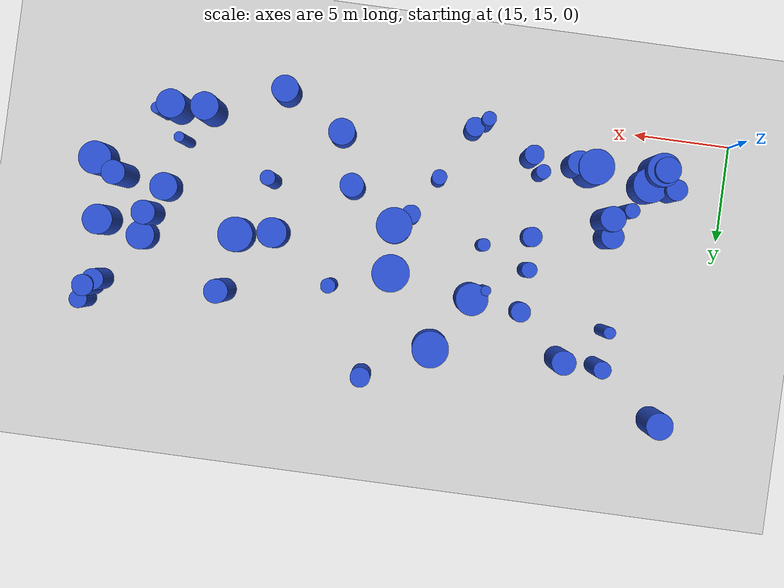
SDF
<sdf version="1.6">
 <world name="default">
  <model name="ground_plane">
   <static>1</static>
   <link name="link">
    <collision name="collision">
     <geometry><plane><normal>0 0 1</normal><size>100 100</size></plane></geometry>
     <surface><friction><ode><mu>100</mu><mu2>50</mu2></ode></friction></surface>
    </collision>
    <visual name="visual">
     <cast_shadows>0</cast_shadows>
     <geometry><plane><normal>0 0 1</normal><size>100 100</size></plane></geometry>
     <material>
      <script><uri>file://media/materials/scripts/gazebo.material</uri><name>Gazebo/Grey</name></script>
     </material>
    </visual>
   </link>
  </model>
  <model name="7">
   <static>0</static>
   <link name="link">
    <inertial>
     <mass>2</mass>
     <inertia><ixx>2.10084</ixx><ixy>0</ixy><ixz>0</ixz><iyy>2.10084</iyy><iyz>0</iyz><izz>0.955069</izz></inertia>
    </inertial>
    <collision name="collision">
     <geometry><cylinder><length>3.12087</length><radius>0.977276</radius></cylinder></geometry>
     <surface><contact><collide_without_contact>1</collide_without_contact></contact></surface>
    </collision>
    <visual name="visual">
     <geometry><cylinder><length>3.12087</length><radius>0.977276</radius></cylinder></geometry>
     <material>
      <script><uri>file://media/materials/scripts/gazebo.material</uri><name>Gazebo/Blue</name></script>
     </material>
    </visual>
    <gravity>0</gravity>
   </link>
   <pose>31.8249 23.959 1.56043 0 -0 0</pose>
  </model>
  <model name="10">
   <static>0</static>
   <link name="link">
    <inertial>
     <mass>2</mass>
     <inertia><ixx>3.95554</ixx><ixy>0</ixy><ixz>0</ixz><iyy>3.95554</iyy><iyz>0</iyz><izz>0.519828</izz></inertia>
    </inertial>
    <collision name="collision">
     <geometry><cylinder><length>4.7089</length><radius>0.720991</radius></cylinder></geometry>
     <surface><contact><collide_without_contact>1</collide_without_contact></contact></surface>
    </collision>
    <visual name="visual">
     <geometry><cylinder><length>4.7089</length><radius>0.720991</radius></cylinder></geometry>
     <material>
      <script><uri>file://media/materials/scripts/gazebo.material</uri><name>Gazebo/Blue</name></script>
     </material>
    </visual>
    <gravity>0</gravity>
   </link>
   <pose>42.2217 16.8427 2.35445 0 -0 0</pose>
  </model>
  <model name="20">
   <static>0</static>
   <link name="link">
    <inertial>
     <mass>2</mass>
     <inertia><ixx>4.13593</ixx><ixy>0</ixy><ixz>0</ixz><iyy>4.13593</iyy><iyz>0</iyz><izz>0.377057</izz></inertia>
    </inertial>
    <collision name="collision">
     <geometry><cylinder><length>4.86666</length><radius>0.614049</radius></cylinder></geometry>
     <surface><contact><collide_without_contact>1</collide_without_contact></contact></surface>
    </collision>
    <visual name="visual">
     <geometry><cylinder><length>4.86666</length><radius>0.614049</radius></cylinder></geometry>
     <material>
      <script><uri>file://media/materials/scripts/gazebo.material</uri><name>Gazebo/Blue</name></script>
     </material>
    </visual>
    <gravity>0</gravity>
   </link>
   <pose>46.3124 20.7601 2.43333 0 -0 0</pose>
  </model>
  <model name="25">
   <static>0</static>
   <link name="link">
    <inertial>
     <mass>2</mass>
     <inertia><ixx>3.21255</ixx><ixy>0</ixy><ixz>0</ixz><iyy>3.21255</iyy><iyz>0</iyz><izz>0.847452</izz></inertia>
    </inertial>
    <collision name="collision">
     <geometry><cylinder><length>4.0906</length><radius>0.920571</radius></cylinder></geometry>
     <surface><contact><collide_without_contact>1</collide_without_contact></contact></surface>
    </collision>
    <visual name="visual">
     <geometry><cylinder><length>4.0906</length><radius>0.920571</radius></cylinder></geometry>
     <material>
      <script><uri>file://media/materials/scripts/gazebo.material</uri><name>Gazebo/Blue</name></script>
     </material>
    </visual>
    <gravity>0</gravity>
   </link>
   <pose>31.9637 21.5128 2.0453 0 -0 0</pose>
  </model>
  <model name="29">
   <static>0</static>
   <link name="link">
    <inertial>
     <mass>2</mass>
     <inertia><ixx>3.4064</ixx><ixy>0</ixy><ixz>0</ixz><iyy>3.4064</iyy><iyz>0</iyz><izz>0.0952166</izz></inertia>
    </inertial>
    <collision name="collision">
     <geometry><cylinder><length>4.48918</length><radius>0.308572</radius></cylinder></geometry>
     <surface><contact><collide_without_contact>1</collide_without_contact></contact></surface>
    </collision>
    <visual name="visual">
     <geometry><cylinder><length>4.48918</length><radius>0.308572</radius></cylinder></geometry>
     <material>
      <script><uri>file://media/materials/scripts/gazebo.material</uri><name>Gazebo/Blue</name></script>
     </material>
    </visual>
    <gravity>0</gravity>
   </link>
   <pose>20.4595 25.4538 2.24459 0 -0 0</pose>
  </model>
  <model name="34">
   <static>0</static>
   <link name="link">
    <inertial>
     <mass>2</mass>
     <inertia><ixx>2.04762</ixx><ixy>0</ixy><ixz>0</ixz><iyy>2.04762</iyy><iyz>0</iyz><izz>0.252697</izz></inertia>
    </inertial>
    <collision name="collision">
     <geometry><cylinder><length>3.39524</length><radius>0.502689</radius></cylinder></geometry>
     <surface><contact><collide_without_contact>1</collide_without_contact></contact></surface>
    </collision>
    <visual name="visual">
     <geometry><cylinder><length>3.39524</length><radius>0.502689</radius></cylinder></geometry>
     <material>
      <script><uri>file://media/materials/scripts/gazebo.material</uri><name>Gazebo/Blue</name></script>
     </material>
    </visual>
    <gravity>0</gravity>
   </link>
   <pose>28.5365 15.9625 1.69762 0 -0 0</pose>
  </model>
  <model name="39">
   <static>0</static>
   <link name="link">
    <inertial>
     <mass>2</mass>
     <inertia><ixx>1.9999</ixx><ixy>0</ixy><ixz>0</ixz><iyy>1.9999</iyy><iyz>0</iyz><izz>0.310791</izz></inertia>
    </inertial>
    <collision name="collision">
     <geometry><cylinder><length>3.32671</length><radius>0.557487</radius></cylinder></geometry>
     <surface><contact><collide_without_contact>1</collide_without_contact></contact></surface>
    </collision>
    <visual name="visual">
     <geometry><cylinder><length>3.32671</length><radius>0.557487</radius></cylinder></geometry>
     <material>
      <script><uri>file://media/materials/scripts/gazebo.material</uri><name>Gazebo/Blue</name></script>
     </material>
    </visual>
    <gravity>0</gravity>
   </link>
   <pose>46.8839 26.2899 1.66335 0 -0 0</pose>
  </model>
  <model name="46">
   <static>0</static>
   <link name="link">
    <inertial>
     <mass>2</mass>
     <inertia><ixx>4.24125</ixx><ixy>0</ixy><ixz>0</ixz><iyy>4.24125</iyy><iyz>0</iyz><izz>0.418546</izz></inertia>
    </inertial>
    <collision name="collision">
     <geometry><cylinder><length>4.91852</length><radius>0.646951</radius></cylinder></geometry>
     <surface><contact><collide_without_contact>1</collide_without_contact></contact></surface>
    </collision>
    <visual name="visual">
     <geometry><cylinder><length>4.91852</length><radius>0.646951</radius></cylinder></geometry>
     <material>
      <script><uri>file://media/materials/scripts/gazebo.material</uri><name>Gazebo/Blue</name></script>
     </material>
    </visual>
    <gravity>0</gravity>
   </link>
   <pose>21.0936 19.7391 2.45926 0 -0 0</pose>
  </model>
  <model name="50">
   <static>0</static>
   <link name="link">
    <inertial>
     <mass>2</mass>
     <inertia><ixx>2.06213</ixx><ixy>0</ixy><ixz>0</ixz><iyy>2.06213</iyy><iyz>0</iyz><izz>0.143933</izz></inertia>
    </inertial>
    <collision name="collision">
     <geometry><cylinder><length>3.45558</length><radius>0.379384</radius></cylinder></geometry>
     <surface><contact><collide_without_contact>1</collide_without_contact></contact></surface>
    </collision>
    <visual name="visual">
     <geometry><cylinder><length>3.45558</length><radius>0.379384</radius></cylinder></geometry>
     <material>
      <script><uri>file://media/materials/scripts/gazebo.material</uri><name>Gazebo/Blue</name></script>
     </material>
    </visual>
    <gravity>0</gravity>
   </link>
   <pose>24.7799 17.7722 1.72779 0 -0 0</pose>
  </model>
  <model name="53">
   <static>0</static>
   <link name="link">
    <inertial>
     <mass>2</mass>
     <inertia><ixx>2.76585</ixx><ixy>0</ixy><ixz>0</ixz><iyy>2.76585</iyy><iyz>0</iyz><izz>0.237555</izz></inertia>
    </inertial>
    <collision name="collision">
     <geometry><cylinder><length>3.98528</length><radius>0.487396</radius></cylinder></geometry>
     <surface><contact><collide_without_contact>1</collide_without_contact></contact></surface>
    </collision>
    <visual name="visual">
     <geometry><cylinder><length>3.98528</length><radius>0.487396</radius></cylinder></geometry>
     <material>
      <script><uri>file://media/materials/scripts/gazebo.material</uri><name>Gazebo/Blue</name></script>
     </material>
    </visual>
    <gravity>0</gravity>
   </link>
   <pose>31.1916 20.8429 1.99264 0 -0 0</pose>
  </model>
  <model name="59">
   <static>0</static>
   <link name="link">
    <inertial>
     <mass>2</mass>
     <inertia><ixx>2.25511</ixx><ixy>0</ixy><ixz>0</ixz><iyy>2.25511</iyy><iyz>0</iyz><izz>0.311242</izz></inertia>
    </inertial>
    <collision name="collision">
     <geometry><cylinder><length>3.54921</length><radius>0.557891</radius></cylinder></geometry>
     <surface><contact><collide_without_contact>1</collide_without_contact></contact></surface>
    </collision>
    <visual name="visual">
     <geometry><cylinder><length>3.54921</length><radius>0.557891</radius></cylinder></geometry>
     <material>
      <script><uri>file://media/materials/scripts/gazebo.material</uri><name>Gazebo/Blue</name></script>
     </material>
    </visual>
    <gravity>0</gravity>
   </link>
   <pose>47.3223 26.6492 1.77461 0 -0 0</pose>
  </model>
  <model name="66">
   <static>0</static>
   <link name="link">
    <inertial>
     <mass>2</mass>
     <inertia><ixx>4.02171</ixx><ixy>0</ixy><ixz>0</ixz><iyy>4.02171</iyy><iyz>0</iyz><izz>0.386224</izz></inertia>
    </inertial>
    <collision name="collision">
     <geometry><cylinder><length>4.79287</length><radius>0.621469</radius></cylinder></geometry>
     <surface><contact><collide_without_contact>1</collide_without_contact></contact></surface>
    </collision>
    <visual name="visual">
     <geometry><cylinder><length>4.79287</length><radius>0.621469</radius></cylinder></geometry>
     <material>
      <script><uri>file://media/materials/scripts/gazebo.material</uri><name>Gazebo/Blue</name></script>
     </material>
    </visual>
    <gravity>0</gravity>
   </link>
   <pose>22.5786 27.2507 2.39644 0 -0 0</pose>
  </model>
  <model name="68">
   <static>0</static>
   <link name="link">
    <inertial>
     <mass>2</mass>
     <inertia><ixx>3.67869</ixx><ixy>0</ixy><ixz>0</ixz><iyy>3.67869</iyy><iyz>0</iyz><izz>0.545919</izz></inertia>
    </inertial>
    <collision name="collision">
     <geometry><cylinder><length>4.52044</length><radius>0.738864</radius></cylinder></geometry>
     <surface><contact><collide_without_contact>1</collide_without_contact></contact></surface>
    </collision>
    <visual name="visual">
     <geometry><cylinder><length>4.52044</length><radius>0.738864</radius></cylinder></geometry>
     <material>
      <script><uri>file://media/materials/scripts/gazebo.material</uri><name>Gazebo/Blue</name></script>
     </material>
    </visual>
    <gravity>0</gravity>
   </link>
   <pose>43.9539 16.9312 2.26022 0 -0 0</pose>
  </model>
  <model name="72">
   <static>0</static>
   <link name="link">
    <inertial>
     <mass>2</mass>
     <inertia>
      <ixx>4.09435</ixx>
      <ixy>0</ixy>
      <ixz>0</ixz>
      <iyy>4.09435</iyy>
      <iyz>0</iyz>
      <izz>0.0686936</izz>
     </inertia>
    </inertial>
    <collision name="collision">
     <geometry><cylinder><length>4.93559</length><radius>0.262095</radius></cylinder></geometry>
     <surface><contact><collide_without_contact>1</collide_without_contact></contact></surface>
    </collision>
    <visual name="visual">
     <geometry><cylinder><length>4.93559</length><radius>0.262095</radius></cylinder></geometry>
     <material>
      <script><uri>file://media/materials/scripts/gazebo.material</uri><name>Gazebo/Blue</name></script>
     </material>
    </visual>
    <gravity>0</gravity>
   </link>
   <pose>43.2507 18.5685 2.46779 0 -0 0</pose>
  </model>
  <model name="73">
   <static>0</static>
   <link name="link">
    <inertial>
     <mass>2</mass>
     <inertia><ixx>3.29793</ixx><ixy>0</ixy><ixz>0</ixz><iyy>3.29793</iyy><iyz>0</iyz><izz>0.382412</izz></inertia>
    </inertial>
    <collision name="collision">
     <geometry><cylinder><length>4.31745</length><radius>0.618395</radius></cylinder></geometry>
     <surface><contact><collide_without_contact>1</collide_without_contact></contact></surface>
    </collision>
    <visual name="visual">
     <geometry><cylinder><length>4.31745</length><radius>0.618395</radius></cylinder></geometry>
     <material>
      <script><uri>file://media/materials/scripts/gazebo.material</uri><name>Gazebo/Blue</name></script>
     </material>
    </visual>
    <gravity>0</gravity>
   </link>
   <pose>34.3582 19.7886 2.15872 0 -0 0</pose>
  </model>
  <model name="79">
   <static>0</static>
   <link name="link">
    <inertial>
     <mass>2</mass>
     <inertia><ixx>2.18613</ixx><ixy>0</ixy><ixz>0</ixz><iyy>2.18613</iyy><iyz>0</iyz><izz>0.163149</izz></inertia>
    </inertial>
    <collision name="collision">
     <geometry><cylinder><length>3.5535</length><radius>0.403917</radius></cylinder></geometry>
     <surface><contact><collide_without_contact>1</collide_without_contact></contact></surface>
    </collision>
    <visual name="visual">
     <geometry><cylinder><length>3.5535</length><radius>0.403917</radius></cylinder></geometry>
     <material>
      <script><uri>file://media/materials/scripts/gazebo.material</uri><name>Gazebo/Blue</name></script>
     </material>
    </visual>
    <gravity>0</gravity>
   </link>
   <pose>24.8327 22.8486 1.77675 0 -0 0</pose>
  </model>
  <model name="80">
   <static>0</static>
   <link name="link">
    <inertial>
     <mass>2</mass>
     <inertia><ixx>1.55271</ixx><ixy>0</ixy><ixz>0</ixz><iyy>1.55271</iyy><iyz>0</iyz><izz>0.739705</izz></inertia>
    </inertial>
    <collision name="collision">
     <geometry><cylinder><length>2.66405</length><radius>0.860061</radius></cylinder></geometry>
     <surface><contact><collide_without_contact>1</collide_without_contact></contact></surface>
    </collision>
    <visual name="visual">
     <geometry><cylinder><length>2.66405</length><radius>0.860061</radius></cylinder></geometry>
     <material>
      <script><uri>file://media/materials/scripts/gazebo.material</uri><name>Gazebo/Blue</name></script>
     </material>
    </visual>
    <gravity>0</gravity>
   </link>
   <pose>47.7162 20.0833 1.33202 0 -0 0</pose>
  </model>
  <model name="83">
   <static>0</static>
   <link name="link">
    <inertial>
     <mass>2</mass>
     <inertia><ixx>1.94416</ixx><ixy>0</ixy><ixz>0</ixz><iyy>1.94416</iyy><iyz>0</iyz><izz>0.270411</izz></inertia>
    </inertial>
    <collision name="collision">
     <geometry><cylinder><length>3.2945</length><radius>0.52001</radius></cylinder></geometry>
     <surface><contact><collide_without_contact>1</collide_without_contact></contact></surface>
    </collision>
    <visual name="visual">
     <geometry><cylinder><length>3.2945</length><radius>0.52001</radius></cylinder></geometry>
     <material>
      <script><uri>file://media/materials/scripts/gazebo.material</uri><name>Gazebo/Blue</name></script>
     </material>
    </visual>
    <gravity>0</gravity>
   </link>
   <pose>32.6703 29.4361 1.64725 0 -0 0</pose>
  </model>
  <model name="86">
   <static>0</static>
   <link name="link">
    <inertial>
     <mass>2</mass>
     <inertia><ixx>2.20974</ixx><ixy>0</ixy><ixz>0</ixz><iyy>2.20974</iyy><iyz>0</iyz><izz>0.600986</izz></inertia>
    </inertial>
    <collision name="collision">
     <geometry><cylinder><length>3.38459</length><radius>0.775233</radius></cylinder></geometry>
     <surface><contact><collide_without_contact>1</collide_without_contact></contact></surface>
    </collision>
    <visual name="visual">
     <geometry><cylinder><length>3.38459</length><radius>0.775233</radius></cylinder></geometry>
     <material>
      <script><uri>file://media/materials/scripts/gazebo.material</uri><name>Gazebo/Blue</name></script>
     </material>
    </visual>
    <gravity>0</gravity>
   </link>
   <pose>47.0507 23.2137 1.6923 0 -0 0</pose>
  </model>
  <model name="89">
   <static>0</static>
   <link name="link">
    <inertial>
     <mass>2</mass>
     <inertia><ixx>2.96796</ixx><ixy>0</ixy><ixz>0</ixz><iyy>2.96796</iyy><iyz>0</iyz><izz>0.745612</izz></inertia>
    </inertial>
    <collision name="collision">
     <geometry><cylinder><length>3.946</length><radius>0.863488</radius></cylinder></geometry>
     <surface><contact><collide_without_contact>1</collide_without_contact></contact></surface>
    </collision>
    <visual name="visual">
     <geometry><cylinder><length>3.946</length><radius>0.863488</radius></cylinder></geometry>
     <material>
      <script><uri>file://media/materials/scripts/gazebo.material</uri><name>Gazebo/Blue</name></script>
     </material>
    </visual>
    <gravity>0</gravity>
   </link>
   <pose>18.7498 16.8816 1.973 0 -0 0</pose>
  </model>
  <model name="105">
   <static>0</static>
   <link name="link">
    <inertial>
     <mass>2</mass>
     <inertia><ixx>1.89447</ixx><ixy>0</ixy><ixz>0</ixz><iyy>1.89447</iyy><iyz>0</iyz><izz>0.110969</izz></inertia>
    </inertial>
    <collision name="collision">
     <geometry><cylinder><length>3.32173</length><radius>0.333121</radius></cylinder></geometry>
     <surface><contact><collide_without_contact>1</collide_without_contact></contact></surface>
    </collision>
    <visual name="visual">
     <geometry><cylinder><length>3.32173</length><radius>0.333121</radius></cylinder></geometry>
     <material>
      <script><uri>file://media/materials/scripts/gazebo.material</uri><name>Gazebo/Blue</name></script>
     </material>
    </visual>
    <gravity>0</gravity>
   </link>
   <pose>27.2919 21.8719 1.66087 0 -0 0</pose>
  </model>
  <model name="108">
   <static>0</static>
   <link name="link">
    <inertial>
     <mass>2</mass>
     <inertia>
      <ixx>0.852702</ixx>
      <ixy>0</ixy>
      <ixz>0</ixz>
      <iyy>0.852702</iyy>
      <iyz>0</iyz>
      <izz>0.271627</izz>
     </inertia>
    </inertial>
    <collision name="collision">
     <geometry><cylinder><length>2.07396</length><radius>0.521178</radius></cylinder></geometry>
     <surface><contact><collide_without_contact>1</collide_without_contact></contact></surface>
    </collision>
    <visual name="visual">
     <geometry><cylinder><length>2.07396</length><radius>0.521178</radius></cylinder></geometry>
     <material>
      <script><uri>file://media/materials/scripts/gazebo.material</uri><name>Gazebo/Blue</name></script>
     </material>
    </visual>
    <gravity>0</gravity>
   </link>
   <pose>24.7996 21.1157 1.03698 0 -0 0</pose>
  </model>
  <model name="109">
   <static>0</static>
   <link name="link">
    <inertial>
     <mass>2</mass>
     <inertia><ixx>2.37827</ixx><ixy>0</ixy><ixz>0</ixz><iyy>2.37827</iyy><iyz>0</iyz><izz>0.30273</izz></inertia>
    </inertial>
    <collision name="collision">
     <geometry><cylinder><length>3.65533</length><radius>0.550209</radius></cylinder></geometry>
     <surface><contact><collide_without_contact>1</collide_without_contact></contact></surface>
    </collision>
    <visual name="visual">
     <geometry><cylinder><length>3.65533</length><radius>0.550209</radius></cylinder></geometry>
     <material>
      <script><uri>file://media/materials/scripts/gazebo.material</uri><name>Gazebo/Blue</name></script>
     </material>
    </visual>
    <gravity>0</gravity>
   </link>
   <pose>17.9244 17.8043 1.82767 0 -0 0</pose>
  </model>
  <model name="112">
   <static>0</static>
   <link name="link">
    <inertial>
     <mass>2</mass>
     <inertia>
      <ixx>0.920044</ixx>
      <ixy>0</ixy>
      <ixz>0</ixz>
      <iyy>0.920044</iyy>
      <iyz>0</iyz>
      <izz>0.269733</izz>
     </inertia>
    </inertial>
    <collision name="collision">
     <geometry><cylinder><length>2.1705</length><radius>0.519358</radius></cylinder></geometry>
     <surface><contact><collide_without_contact>1</collide_without_contact></contact></surface>
    </collision>
    <visual name="visual">
     <geometry><cylinder><length>2.1705</length><radius>0.519358</radius></cylinder></geometry>
     <material>
      <script><uri>file://media/materials/scripts/gazebo.material</uri><name>Gazebo/Blue</name></script>
     </material>
    </visual>
    <gravity>0</gravity>
   </link>
   <pose>24.8809 25.067 1.08525 0 -0 0</pose>
  </model>
  <model name="116">
   <static>0</static>
   <link name="link">
    <inertial>
     <mass>2</mass>
     <inertia><ixx>3.48936</ixx><ixy>0</ixy><ixz>0</ixz><iyy>3.48936</iyy><iyz>0</iyz><izz>0.443704</izz></inertia>
    </inertial>
    <collision name="collision">
     <geometry><cylinder><length>4.42776</length><radius>0.666111</radius></cylinder></geometry>
     <surface><contact><collide_without_contact>1</collide_without_contact></contact></surface>
    </collision>
    <visual name="visual">
     <geometry><cylinder><length>4.42776</length><radius>0.666111</radius></cylinder></geometry>
     <material>
      <script><uri>file://media/materials/scripts/gazebo.material</uri><name>Gazebo/Blue</name></script>
     </material>
    </visual>
    <gravity>0</gravity>
   </link>
   <pose>18.6073 16.8956 2.21388 0 -0 0</pose>
  </model>
  <model name="123">
   <static>0</static>
   <link name="link">
    <inertial>
     <mass>2</mass>
     <inertia><ixx>4.17163</ixx><ixy>0</ixy><ixz>0</ixz><iyy>4.17163</iyy><iyz>0</iyz><izz>0.152113</izz></inertia>
    </inertial>
    <collision name="collision">
     <geometry><cylinder><length>4.95716</length><radius>0.390016</radius></cylinder></geometry>
     <surface><contact><collide_without_contact>1</collide_without_contact></contact></surface>
    </collision>
    <visual name="visual">
     <geometry><cylinder><length>4.95716</length><radius>0.390016</radius></cylinder></geometry>
     <material>
      <script><uri>file://media/materials/scripts/gazebo.material</uri><name>Gazebo/Blue</name></script>
     </material>
    </visual>
    <gravity>0</gravity>
   </link>
   <pose>38.5687 20.004 2.47858 0 -0 0</pose>
  </model>
  <model name="128">
   <static>0</static>
   <link name="link">
    <inertial>
     <mass>2</mass>
     <inertia><ixx>2.87427</ixx><ixy>0</ixy><ixz>0</ixz><iyy>2.87427</iyy><iyz>0</iyz><izz>0.48546</izz></inertia>
    </inertial>
    <collision name="collision">
     <geometry><cylinder><length>3.97357</length><radius>0.69675</radius></cylinder></geometry>
     <surface><contact><collide_without_contact>1</collide_without_contact></contact></surface>
    </collision>
    <visual name="visual">
     <geometry><cylinder><length>3.97357</length><radius>0.69675</radius></cylinder></geometry>
     <material>
      <script><uri>file://media/materials/scripts/gazebo.material</uri><name>Gazebo/Blue</name></script>
     </material>
    </visual>
    <gravity>0</gravity>
   </link>
   <pose>17.2459 29.8304 1.98678 0 -0 0</pose>
  </model>
  <model name="129">
   <static>0</static>
   <link name="link">
    <inertial>
     <mass>2</mass>
     <inertia>
      <ixx>3.18166</ixx>
      <ixy>0</ixy>
      <ixz>0</ixz>
      <iyy>3.18166</iyy>
      <iyz>0</iyz>
      <izz>0.0662156</izz>
     </inertia>
    </inertial>
    <collision name="collision">
     <geometry><cylinder><length>4.34642</length><radius>0.257324</radius></cylinder></geometry>
     <surface><contact><collide_without_contact>1</collide_without_contact></contact></surface>
    </collision>
    <visual name="visual">
     <geometry><cylinder><length>4.34642</length><radius>0.257324</radius></cylinder></geometry>
     <material>
      <script><uri>file://media/materials/scripts/gazebo.material</uri><name>Gazebo/Blue</name></script>
     </material>
    </visual>
    <gravity>0</gravity>
   </link>
   <pose>26.9244 24.1778 2.17321 0 -0 0</pose>
  </model>
  <model name="131">
   <static>0</static>
   <link name="link">
    <inertial>
     <mass>2</mass>
     <inertia><ixx>3.06232</ixx><ixy>0</ixy><ixz>0</ixz><iyy>3.06232</iyy><iyz>0</iyz><izz>0.387296</izz></inertia>
    </inertial>
    <collision name="collision">
     <geometry><cylinder><length>4.14874</length><radius>0.622331</radius></cylinder></geometry>
     <surface><contact><collide_without_contact>1</collide_without_contact></contact></surface>
    </collision>
    <visual name="visual">
     <geometry><cylinder><length>4.14874</length><radius>0.622331</radius></cylinder></geometry>
     <material>
      <script><uri>file://media/materials/scripts/gazebo.material</uri><name>Gazebo/Blue</name></script>
     </material>
    </visual>
    <gravity>0</gravity>
   </link>
   <pose>23.0565 17.1107 2.07437 0 -0 0</pose>
  </model>
  <model name="144">
   <static>0</static>
   <link name="link">
    <inertial>
     <mass>2</mass>
     <inertia><ixx>1.29793</ixx><ixy>0</ixy><ixz>0</ixz><iyy>1.29793</iyy><iyz>0</iyz><izz>0.832214</izz></inertia>
    </inertial>
    <collision name="collision">
     <geometry><cylinder><length>2.30021</length><radius>0.912257</radius></cylinder></geometry>
     <surface><contact><collide_without_contact>1</collide_without_contact></contact></surface>
    </collision>
    <visual name="visual">
     <geometry><cylinder><length>2.30021</length><radius>0.912257</radius></cylinder></geometry>
     <material>
      <script><uri>file://media/materials/scripts/gazebo.material</uri><name>Gazebo/Blue</name></script>
     </material>
    </visual>
    <gravity>0</gravity>
   </link>
   <pose>40.0746 23.0411 1.1501 0 -0 0</pose>
  </model>
  <model name="149">
   <static>0</static>
   <link name="link">
    <inertial>
     <mass>2</mass>
     <inertia><ixx>2.1817</ixx><ixy>0</ixy><ixz>0</ixz><iyy>2.1817</iyy><iyz>0</iyz><izz>0.152978</izz></inertia>
    </inertial>
    <collision name="collision">
     <geometry><cylinder><length>3.55405</length><radius>0.391123</radius></cylinder></geometry>
     <surface><contact><collide_without_contact>1</collide_without_contact></contact></surface>
    </collision>
    <visual name="visual">
     <geometry><cylinder><length>3.55405</length><radius>0.391123</radius></cylinder></geometry>
     <material>
      <script><uri>file://media/materials/scripts/gazebo.material</uri><name>Gazebo/Blue</name></script>
     </material>
    </visual>
    <gravity>0</gravity>
   </link>
   <pose>30.0083 18.7554 1.77703 0 -0 0</pose>
  </model>
  <model name="150">
   <static>0</static>
   <link name="link">
    <inertial>
     <mass>2</mass>
     <inertia><ixx>1.20795</ixx><ixy>0</ixy><ixz>0</ixz><iyy>1.20795</iyy><iyz>0</iyz><izz>0.525893</izz></inertia>
    </inertial>
    <collision name="collision">
     <geometry><cylinder><length>2.38118</length><radius>0.725185</radius></cylinder></geometry>
     <surface><contact><collide_without_contact>1</collide_without_contact></contact></surface>
    </collision>
    <visual name="visual">
     <geometry><cylinder><length>2.38118</length><radius>0.725185</radius></cylinder></geometry>
     <material>
      <script><uri>file://media/materials/scripts/gazebo.material</uri><name>Gazebo/Blue</name></script>
     </material>
    </visual>
    <gravity>0</gravity>
   </link>
   <pose>44.0581 21.0779 1.19059 0 -0 0</pose>
  </model>
  <model name="153">
   <static>0</static>
   <link name="link">
    <inertial>
     <mass>2</mass>
     <inertia><ixx>3.3934</ixx><ixy>0</ixy><ixz>0</ixz><iyy>3.3934</iyy><iyz>0</iyz><izz>0.0812406</izz></inertia>
    </inertial>
    <collision name="collision">
     <geometry><cylinder><length>4.48516</length><radius>0.285027</radius></cylinder></geometry>
     <surface><contact><collide_without_contact>1</collide_without_contact></contact></surface>
    </collision>
    <visual name="visual">
     <geometry><cylinder><length>4.48516</length><radius>0.285027</radius></cylinder></geometry>
     <material>
      <script><uri>file://media/materials/scripts/gazebo.material</uri><name>Gazebo/Blue</name></script>
     </material>
    </visual>
    <gravity>0</gravity>
   </link>
   <pose>44.6342 17.2397 2.24258 0 -0 0</pose>
  </model>
  <model name="166">
   <static>0</static>
   <link name="link">
    <inertial>
     <mass>2</mass>
     <inertia><ixx>3.36386</ixx><ixy>0</ixy><ixz>0</ixz><iyy>3.36386</iyy><iyz>0</iyz><izz>0.685961</izz></inertia>
    </inertial>
    <collision name="collision">
     <geometry><cylinder><length>4.25738</length><radius>0.828227</radius></cylinder></geometry>
     <surface><contact><collide_without_contact>1</collide_without_contact></contact></surface>
    </collision>
    <visual name="visual">
     <geometry><cylinder><length>4.25738</length><radius>0.828227</radius></cylinder></geometry>
     <material>
      <script><uri>file://media/materials/scripts/gazebo.material</uri><name>Gazebo/Blue</name></script>
     </material>
    </visual>
    <gravity>0</gravity>
   </link>
   <pose>27.566 24.7086 2.12869 0 -0 0</pose>
  </model>
  <model name="172">
   <static>0</static>
   <link name="link">
    <inertial>
     <mass>2</mass>
     <inertia><ixx>1.41095</ixx><ixy>0</ixy><ixz>0</ixz><iyy>1.41095</iyy><iyz>0</iyz><izz>0.489135</izz></inertia>
    </inertial>
    <collision name="collision">
     <geometry><cylinder><length>2.64543</length><radius>0.699382</radius></cylinder></geometry>
     <surface><contact><collide_without_contact>1</collide_without_contact></contact></surface>
    </collision>
    <visual name="visual">
     <geometry><cylinder><length>2.64543</length><radius>0.699382</radius></cylinder></geometry>
     <material>
      <script><uri>file://media/materials/scripts/gazebo.material</uri><name>Gazebo/Blue</name></script>
     </material>
    </visual>
    <gravity>0</gravity>
   </link>
   <pose>35.2961 17.0627 1.32271 0 -0 0</pose>
  </model>
  <model name="174">
   <static>0</static>
   <link name="link">
    <inertial>
     <mass>2</mass>
     <inertia><ixx>1.76318</ixx><ixy>0</ixy><ixz>0</ixz><iyy>1.76318</iyy><iyz>0</iyz><izz>0.613223</izz></inertia>
    </inertial>
    <collision name="collision">
     <geometry><cylinder><length>2.95625</length><radius>0.783086</radius></cylinder></geometry>
     <surface><contact><collide_without_contact>1</collide_without_contact></contact></surface>
    </collision>
    <visual name="visual">
     <geometry><cylinder><length>2.95625</length><radius>0.783086</radius></cylinder></geometry>
     <material>
      <script><uri>file://media/materials/scripts/gazebo.material</uri><name>Gazebo/Blue</name></script>
     </material>
    </visual>
    <gravity>0</gravity>
   </link>
   <pose>38.1527 22.7004 1.47812 0 -0 0</pose>
  </model>
  <model name="175">
   <static>0</static>
   <link name="link">
    <inertial>
     <mass>2</mass>
     <inertia><ixx>1.56998</ixx><ixy>0</ixy><ixz>0</ixz><iyy>1.56998</iyy><iyz>0</iyz><izz>0.215469</izz></inertia>
    </inertial>
    <collision name="collision">
     <geometry><cylinder><length>2.962</length><radius>0.464186</radius></cylinder></geometry>
     <surface><contact><collide_without_contact>1</collide_without_contact></contact></surface>
    </collision>
    <visual name="visual">
     <geometry><cylinder><length>2.962</length><radius>0.464186</radius></cylinder></geometry>
     <material>
      <script><uri>file://media/materials/scripts/gazebo.material</uri><name>Gazebo/Blue</name></script>
     </material>
    </visual>
    <gravity>0</gravity>
   </link>
   <pose>47.5551 27.4058 1.481 0 -0 0</pose>
  </model>
  <model name="177">
   <static>0</static>
   <link name="link">
    <inertial>
     <mass>2</mass>
     <inertia><ixx>1.93866</ixx><ixy>0</ixy><ixz>0</ixz><iyy>1.93866</iyy><iyz>0</iyz><izz>0.498334</izz></inertia>
    </inertial>
    <collision name="collision">
     <geometry><cylinder><length>3.18386</length><radius>0.705928</radius></cylinder></geometry>
     <surface><contact><collide_without_contact>1</collide_without_contact></contact></surface>
    </collision>
    <visual name="visual">
     <geometry><cylinder><length>3.18386</length><radius>0.705928</radius></cylinder></geometry>
     <material>
      <script><uri>file://media/materials/scripts/gazebo.material</uri><name>Gazebo/Blue</name></script>
     </material>
    </visual>
    <gravity>0</gravity>
   </link>
   <pose>38.4389 15.3047 1.59193 0 -0 0</pose>
  </model>
  <model name="186">
   <static>0</static>
   <link name="link">
    <inertial>
     <mass>2</mass>
     <inertia><ixx>2.05452</ixx><ixy>0</ixy><ixz>0</ixz><iyy>2.05452</iyy><iyz>0</iyz><izz>0.150024</izz></inertia>
    </inertial>
    <collision name="collision">
     <geometry><cylinder><length>3.44631</length><radius>0.387329</radius></cylinder></geometry>
     <surface><contact><collide_without_contact>1</collide_without_contact></contact></surface>
    </collision>
    <visual name="visual">
     <geometry><cylinder><length>3.44631</length><radius>0.387329</radius></cylinder></geometry>
     <material>
      <script><uri>file://media/materials/scripts/gazebo.material</uri><name>Gazebo/Blue</name></script>
     </material>
    </visual>
    <gravity>0</gravity>
   </link>
   <pose>34.9087 25.0154 1.72316 0 -0 0</pose>
  </model>
  <model name="188">
   <static>0</static>
   <link name="link">
    <inertial>
     <mass>2</mass>
     <inertia><ixx>2.92046</ixx><ixy>0</ixy><ixz>0</ixz><iyy>2.92046</iyy><iyz>0</iyz><izz>0.252098</izz></inertia>
    </inertial>
    <collision name="collision">
     <geometry><cylinder><length>4.09469</length><radius>0.502093</radius></cylinder></geometry>
     <surface><contact><collide_without_contact>1</collide_without_contact></contact></surface>
    </collision>
    <visual name="visual">
     <geometry><cylinder><length>4.09469</length><radius>0.502093</radius></cylinder></geometry>
     <material>
      <script><uri>file://media/materials/scripts/gazebo.material</uri><name>Gazebo/Blue</name></script>
     </material>
    </visual>
    <gravity>0</gravity>
   </link>
   <pose>25.3993 17.0112 2.04734 0 -0 0</pose>
  </model>
  <model name="191">
   <static>0</static>
   <link name="link">
    <inertial>
     <mass>2</mass>
     <inertia>
      <ixx>0.984393</ixx>
      <ixy>0</ixy>
      <ixz>0</ixz>
      <iyy>0.984393</iyy>
      <iyz>0</iyz>
      <izz>0.552445</izz>
     </inertia>
    </inertial>
    <collision name="collision">
     <geometry><cylinder><length>2.06132</length><radius>0.743266</radius></cylinder></geometry>
     <surface><contact><collide_without_contact>1</collide_without_contact></contact></surface>
    </collision>
    <visual name="visual">
     <geometry><cylinder><length>2.06132</length><radius>0.743266</radius></cylinder></geometry>
     <material>
      <script><uri>file://media/materials/scripts/gazebo.material</uri><name>Gazebo/Blue</name></script>
     </material>
    </visual>
    <gravity>0</gravity>
   </link>
   <pose>44.9695 23.7353 1.03066 0 -0 0</pose>
  </model>
  <model name="195">
   <static>0</static>
   <link name="link">
    <inertial>
     <mass>2</mass>
     <inertia><ixx>3.58815</ixx><ixy>0</ixy><ixz>0</ixz><iyy>3.58815</iyy><iyz>0</iyz><izz>0.135348</izz></inertia>
    </inertial>
    <collision name="collision">
     <geometry><cylinder><length>4.59596</length><radius>0.367897</radius></cylinder></geometry>
     <surface><contact><collide_without_contact>1</collide_without_contact></contact></surface>
    </collision>
    <visual name="visual">
     <geometry><cylinder><length>4.59596</length><radius>0.367897</radius></cylinder></geometry>
     <material>
      <script><uri>file://media/materials/scripts/gazebo.material</uri><name>Gazebo/Blue</name></script>
     </material>
    </visual>
    <gravity>0</gravity>
   </link>
   <pose>27.9233 15.5456 2.29798 0 -0 0</pose>
  </model>
  <model name="200">
   <static>0</static>
   <link name="link">
    <inertial>
     <mass>2</mass>
     <inertia><ixx>2.63983</ixx><ixy>0</ixy><ixz>0</ixz><iyy>2.63983</iyy><iyz>0</iyz><izz>0.354115</izz></inertia>
    </inertial>
    <collision name="collision">
     <geometry><cylinder><length>3.84404</length><radius>0.595075</radius></cylinder></geometry>
     <surface><contact><collide_without_contact>1</collide_without_contact></contact></surface>
    </collision>
    <visual name="visual">
     <geometry><cylinder><length>3.84404</length><radius>0.595075</radius></cylinder></geometry>
     <material>
      <script><uri>file://media/materials/scripts/gazebo.material</uri><name>Gazebo/Blue</name></script>
     </material>
    </visual>
    <gravity>0</gravity>
   </link>
   <pose>20.8837 20.6261 1.92202 0 -0 0</pose>
  </model>
  <model name="204">
   <static>0</static>
   <link name="link">
    <inertial>
     <mass>2</mass>
     <inertia><ixx>3.72467</ixx><ixy>0</ixy><ixz>0</ixz><iyy>3.72467</iyy><iyz>0</iyz><izz>0.201517</izz></inertia>
    </inertial>
    <collision name="collision">
     <geometry><cylinder><length>4.66299</length><radius>0.448906</radius></cylinder></geometry>
     <surface><contact><collide_without_contact>1</collide_without_contact></contact></surface>
    </collision>
    <visual name="visual">
     <geometry><cylinder><length>4.66299</length><radius>0.448906</radius></cylinder></geometry>
     <material>
      <script><uri>file://media/materials/scripts/gazebo.material</uri><name>Gazebo/Blue</name></script>
     </material>
    </visual>
    <gravity>0</gravity>
   </link>
   <pose>20.5993 27.353 2.3315 0 -0 0</pose>
  </model>
  <model name="206">
   <static>0</static>
   <link name="link">
    <inertial>
     <mass>2</mass>
     <inertia><ixx>3.80967</ixx><ixy>0</ixy><ixz>0</ixz><iyy>3.80967</iyy><iyz>0</iyz><izz>0.380412</izz></inertia>
    </inertial>
    <collision name="collision">
     <geometry><cylinder><length>4.66013</length><radius>0.616775</radius></cylinder></geometry>
     <surface><contact><collide_without_contact>1</collide_without_contact></contact></surface>
    </collision>
    <visual name="visual">
     <geometry><cylinder><length>4.66013</length><radius>0.616775</radius></cylinder></geometry>
     <material>
      <script><uri>file://media/materials/scripts/gazebo.material</uri><name>Gazebo/Blue</name></script>
     </material>
    </visual>
    <gravity>0</gravity>
   </link>
   <pose>40.4302 26.0122 2.33007 0 -0 0</pose>
  </model>
  <model name="229">
   <static>0</static>
   <link name="link">
    <inertial>
     <mass>2</mass>
     <inertia><ixx>3.64642</ixx><ixy>0</ixy><ixz>0</ixz><iyy>3.64642</iyy><iyz>0</iyz><izz>0.841675</izz></inertia>
    </inertial>
    <collision name="collision">
     <geometry><cylinder><length>4.39926</length><radius>0.917428</radius></cylinder></geometry>
     <surface><contact><collide_without_contact>1</collide_without_contact></contact></surface>
    </collision>
    <visual name="visual">
     <geometry><cylinder><length>4.39926</length><radius>0.917428</radius></cylinder></geometry>
     <material>
      <script><uri>file://media/materials/scripts/gazebo.material</uri><name>Gazebo/Blue</name></script>
     </material>
    </visual>
    <gravity>0</gravity>
   </link>
   <pose>22.2146 17.2205 2.19963 0 -0 0</pose>
  </model>
  <model name="234">
   <static>0</static>
   <link name="link">
    <inertial>
     <mass>2</mass>
     <inertia><ixx>2.80496</ixx><ixy>0</ixy><ixz>0</ixz><iyy>2.80496</iyy><iyz>0</iyz><izz>0.14818</izz></inertia>
    </inertial>
    <collision name="collision">
     <geometry><cylinder><length>4.04787</length><radius>0.384941</radius></cylinder></geometry>
     <surface><contact><collide_without_contact>1</collide_without_contact></contact></surface>
    </collision>
    <visual name="visual">
     <geometry><cylinder><length>4.04787</length><radius>0.384941</radius></cylinder></geometry>
     <material>
      <script><uri>file://media/materials/scripts/gazebo.material</uri><name>Gazebo/Blue</name></script>
     </material>
    </visual>
    <gravity>0</gravity>
   </link>
   <pose>20.0865 19.1662 2.02393 0 -0 0</pose>
  </model>
  <model name="237">
   <static>0</static>
   <link name="link">
    <inertial>
     <mass>2</mass>
     <inertia><ixx>1.98057</ixx><ixy>0</ixy><ixz>0</ixz><iyy>1.98057</iyy><iyz>0</iyz><izz>0.912841</izz></inertia>
    </inertial>
    <collision name="collision">
     <geometry><cylinder><length>3.02405</length><radius>0.955427</radius></cylinder></geometry>
     <surface><contact><collide_without_contact>1</collide_without_contact></contact></surface>
    </collision>
    <visual name="visual">
     <geometry><cylinder><length>3.02405</length><radius>0.955427</radius></cylinder></geometry>
     <material>
      <script><uri>file://media/materials/scripts/gazebo.material</uri><name>Gazebo/Blue</name></script>
     </material>
    </visual>
    <gravity>0</gravity>
   </link>
   <pose>29.2851 27.5652 1.51203 0 -0 0</pose>
  </model>
  <model name="239">
   <static>0</static>
   <link name="link">
    <inertial>
     <mass>2</mass>
     <inertia><ixx>1.81074</ixx><ixy>0</ixy><ixz>0</ixz><iyy>1.81074</iyy><iyz>0</iyz><izz>0.834126</izz></inertia>
    </inertial>
    <collision name="collision">
     <geometry><cylinder><length>2.89172</length><radius>0.913305</radius></cylinder></geometry>
     <surface><contact><collide_without_contact>1</collide_without_contact></contact></surface>
    </collision>
    <visual name="visual">
     <geometry><cylinder><length>2.89172</length><radius>0.913305</radius></cylinder></geometry>
     <material>
      <script><uri>file://media/materials/scripts/gazebo.material</uri><name>Gazebo/Blue</name></script>
     </material>
    </visual>
    <gravity>0</gravity>
   </link>
   <pose>19.1789 17.686 1.44586 0 -0 0</pose>
  </model>
  <model name="243">
   <static>0</static>
   <link name="link">
    <inertial>
     <mass>2</mass>
     <inertia><ixx>2.64476</ixx><ixy>0</ixy><ixz>0</ixz><iyy>2.64476</iyy><iyz>0</iyz><izz>0.384883</izz></inertia>
    </inertial>
    <collision name="collision">
     <geometry><cylinder><length>3.83587</length><radius>0.62039</radius></cylinder></geometry>
     <surface><contact><collide_without_contact>1</collide_without_contact></contact></surface>
    </collision>
    <visual name="visual">
     <geometry><cylinder><length>3.83587</length><radius>0.62039</radius></cylinder></geometry>
     <material>
      <script><uri>file://media/materials/scripts/gazebo.material</uri><name>Gazebo/Blue</name></script>
     </material>
    </visual>
    <gravity>0</gravity>
   </link>
   <pose>44.712 22.5458 1.91794 0 -0 0</pose>
  </model>
 </world>
</sdf>
